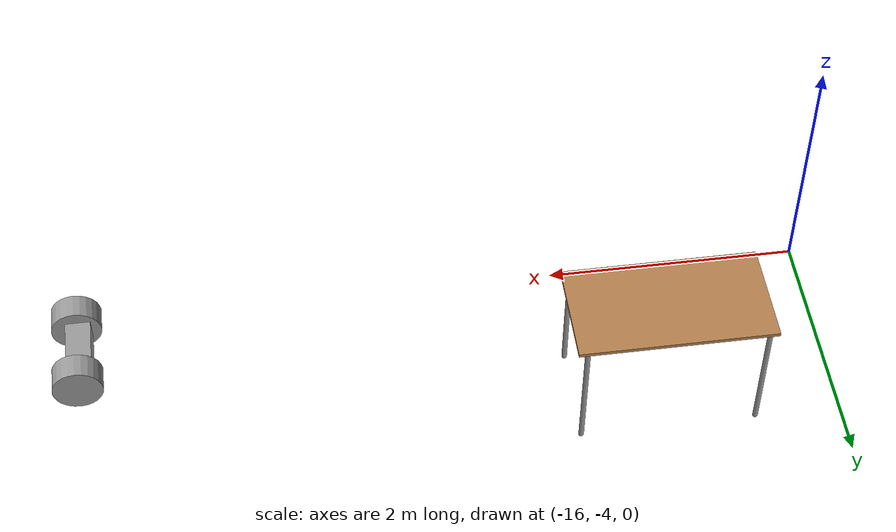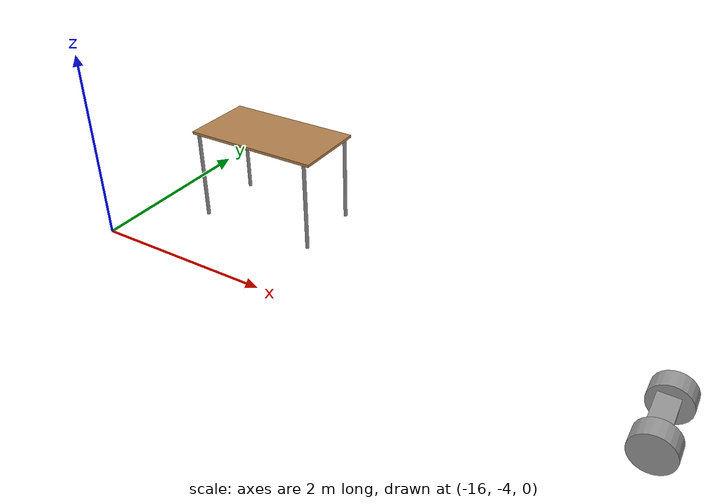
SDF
<?xml version='1.0'?>
<sdf version='1.6'>
  <model name='Table'>
    <model name='Table'>
      <model name='table'>
        <static>1</static>
        <link name='link'>
          <collision name='surface'>
            <pose frame=''>0 0 1 0 -0 0</pose>
            <geometry>
              <box>
                <size>1.5 0.8 0.03</size>
              </box>
            </geometry>
            <surface>
              <friction>
                <ode>
                  <mu>0.6</mu>
                  <mu2>0.6</mu2>
                </ode>
              </friction>
            </surface>
          </collision>
          <visual name='visual1'>
            <pose frame=''>0 0 1 0 -0 0</pose>
            <geometry>
              <box>
                <size>1.5 0.8 0.03</size>
              </box>
            </geometry>
            <material>
              <script>
                <uri>file://media/materials/scripts/gazebo.material</uri>
                <name>Gazebo/Wood</name>
              </script>
            </material>
          </visual>
          <collision name='front_left_leg'>
            <pose frame=''>0.68 0.38 0.5 0 -0 0</pose>
            <geometry>
              <cylinder>
                <radius>0.02</radius>
                <length>1</length>
              </cylinder>
            </geometry>
          </collision>
          <visual name='front_left_leg'>
            <pose frame=''>0.68 0.38 0.5 0 -0 0</pose>
            <geometry>
              <cylinder>
                <radius>0.02</radius>
                <length>1</length>
              </cylinder>
            </geometry>
            <material>
              <script>
                <uri>file://media/materials/scripts/gazebo.material</uri>
                <name>Gazebo/Grey</name>
              </script>
            </material>
          </visual>
          <collision name='front_right_leg'>
            <pose frame=''>0.68 -0.38 0.5 0 -0 0</pose>
            <geometry>
              <cylinder>
                <radius>0.02</radius>
                <length>1</length>
              </cylinder>
            </geometry>
          </collision>
          <visual name='front_right_leg'>
            <pose frame=''>0.68 -0.38 0.5 0 -0 0</pose>
            <geometry>
              <cylinder>
                <radius>0.02</radius>
                <length>1</length>
              </cylinder>
            </geometry>
            <material>
              <script>
                <uri>file://media/materials/scripts/gazebo.material</uri>
                <name>Gazebo/Grey</name>
              </script>
            </material>
          </visual>
          <collision name='back_right_leg'>
            <pose frame=''>-0.68 -0.38 0.5 0 -0 0</pose>
            <geometry>
              <cylinder>
                <radius>0.02</radius>
                <length>1</length>
              </cylinder>
            </geometry>
          </collision>
          <visual name='back_right_leg'>
            <pose frame=''>-0.68 -0.38 0.5 0 -0 0</pose>
            <geometry>
              <cylinder>
                <radius>0.02</radius>
                <length>1</length>
              </cylinder>
            </geometry>
            <material>
              <script>
                <uri>file://media/materials/scripts/gazebo.material</uri>
                <name>Gazebo/Grey</name>
              </script>
            </material>
          </visual>
          <collision name='back_left_leg'>
            <pose frame=''>-0.68 0.38 0.5 0 -0 0</pose>
            <geometry>
              <cylinder>
                <radius>0.02</radius>
                <length>1</length>
              </cylinder>
            </geometry>
          </collision>
          <visual name='back_left_leg'>
            <pose frame=''>-0.68 0.38 0.5 0 -0 0</pose>
            <geometry>
              <cylinder>
                <radius>0.02</radius>
                <length>1</length>
              </cylinder>
            </geometry>
            <material>
              <script>
                <uri>file://media/materials/scripts/gazebo.material</uri>
                <name>Gazebo/Grey</name>
              </script>
            </material>
          </visual>
        </link>
        <pose frame=''>-3.8e-05 -3e-06 0 0 -0 0</pose>
      </model>
      <static>0</static>
      <allow_auto_disable>1</allow_auto_disable>
      <pose frame=''>-14.655 -2.78483 0 0 -0 0</pose>
    </model>
    <model name='Robot'>
      <link name='link_0'>
        <pose frame=''>-0.013333 0 0 0 -0 0</pose>
        <inertial>
          <mass>1</mass>
          <inertia>
            <ixx>0.166667</ixx>
            <ixy>0</ixy>
            <ixz>0</ixz>
            <iyy>0.166667</iyy>
            <iyz>0</iyz>
            <izz>0.166667</izz>
          </inertia>
          <pose frame=''>0 0 0 0 -0 0</pose>
        </inertial>
        <gravity>1</gravity>
        <self_collide>0</self_collide>
        <kinematic>0</kinematic>
        <visual name='visual'>
          <pose frame=''>0 0 0 0 -0 0</pose>
          <geometry>
            <box>
              <size>0.2 0.4 0.2</size>
            </box>
          </geometry>
          <material>
            <lighting>1</lighting>
            <script>
              <uri>file://media/materials/scripts/gazebo.material</uri>
              <name>Gazebo/Grey</name>
            </script>
            <shader type='pixel'>
              <normal_map>__default__</normal_map>
            </shader>
            <ambient>0.3 0.3 0.3 1</ambient>
            <diffuse>0.7 0.7 0.7 1</diffuse>
            <specular>0.01 0.01 0.01 1</specular>
            <emissive>0 0 0 1</emissive>
          </material>
          <transparency>0</transparency>
          <cast_shadows>1</cast_shadows>
        </visual>
        <collision name='collision'>
          <laser_retro>0</laser_retro>
          <max_contacts>10</max_contacts>
          <pose frame=''>0 0 0 0 -0 0</pose>
          <geometry>
            <box>
              <size>0.2 0.4 0.2</size>
            </box>
          </geometry>
          <surface>
            <friction>
              <ode>
                <mu>1</mu>
                <mu2>1</mu2>
                <fdir1>0 0 0</fdir1>
                <slip1>0</slip1>
                <slip2>0</slip2>
              </ode>
              <torsional>
                <coefficient>1</coefficient>
                <patch_radius>0</patch_radius>
                <surface_radius>0</surface_radius>
                <use_patch_radius>1</use_patch_radius>
                <ode>
                  <slip>0</slip>
                </ode>
              </torsional>
            </friction>
            <bounce>
              <restitution_coefficient>0</restitution_coefficient>
              <threshold>1e+06</threshold>
            </bounce>
            <contact>
              <collide_without_contact>0</collide_without_contact>
              <collide_without_contact_bitmask>1</collide_without_contact_bitmask>
              <collide_bitmask>1</collide_bitmask>
              <ode>
                <soft_cfm>0</soft_cfm>
                <soft_erp>0.2</soft_erp>
                <kp>1e+13</kp>
                <kd>1</kd>
                <max_vel>0.01</max_vel>
                <min_depth>0</min_depth>
              </ode>
              <bullet>
                <split_impulse>1</split_impulse>
                <split_impulse_penetration_threshold>-0.01</split_impulse_penetration_threshold>
                <soft_cfm>0</soft_cfm>
                <soft_erp>0.2</soft_erp>
                <kp>1e+13</kp>
                <kd>1</kd>
              </bullet>
            </contact>
          </surface>
        </collision>
      </link>
      <link name='link_2'>
        <pose frame=''>0.006667 -0.300019 0 1.5707 -0 0</pose>
        <inertial>
          <mass>1</mass>
          <inertia>
            <ixx>0.145833</ixx>
            <ixy>0</ixy>
            <ixz>0</ixz>
            <iyy>0.145833</iyy>
            <iyz>0</iyz>
            <izz>0.125</izz>
          </inertia>
          <pose frame=''>0 0 0 0 -0 0</pose>
        </inertial>
        <gravity>1</gravity>
        <self_collide>0</self_collide>
        <kinematic>0</kinematic>
        <visual name='visual'>
          <pose frame=''>0 0 0 0 -0 0</pose>
          <geometry>
            <cylinder>
              <radius>0.2</radius>
              <length>0.2</length>
            </cylinder>
          </geometry>
          <material>
            <lighting>1</lighting>
            <script>
              <uri>file://media/materials/scripts/gazebo.material</uri>
              <name>Gazebo/Grey</name>
            </script>
            <shader type='pixel'>
              <normal_map>__default__</normal_map>
            </shader>
            <ambient>0.3 0.3 0.3 1</ambient>
            <diffuse>0.7 0.7 0.7 1</diffuse>
            <specular>0.01 0.01 0.01 1</specular>
            <emissive>0 0 0 1</emissive>
          </material>
          <transparency>0</transparency>
          <cast_shadows>1</cast_shadows>
        </visual>
        <collision name='collision'>
          <laser_retro>0</laser_retro>
          <max_contacts>10</max_contacts>
          <pose frame=''>0 0 0 0 -0 0</pose>
          <geometry>
            <cylinder>
              <radius>0.2</radius>
              <length>0.2</length>
            </cylinder>
          </geometry>
          <surface>
            <friction>
              <ode>
                <mu>1</mu>
                <mu2>1</mu2>
                <fdir1>0 0 0</fdir1>
                <slip1>0</slip1>
                <slip2>0</slip2>
              </ode>
              <torsional>
                <coefficient>1</coefficient>
                <patch_radius>0</patch_radius>
                <surface_radius>0</surface_radius>
                <use_patch_radius>1</use_patch_radius>
                <ode>
                  <slip>0</slip>
                </ode>
              </torsional>
            </friction>
            <bounce>
              <restitution_coefficient>0</restitution_coefficient>
              <threshold>1e+06</threshold>
            </bounce>
            <contact>
              <collide_without_contact>0</collide_without_contact>
              <collide_without_contact_bitmask>1</collide_without_contact_bitmask>
              <collide_bitmask>1</collide_bitmask>
              <ode>
                <soft_cfm>0</soft_cfm>
                <soft_erp>0.2</soft_erp>
                <kp>1e+13</kp>
                <kd>1</kd>
                <max_vel>0.01</max_vel>
                <min_depth>0</min_depth>
              </ode>
              <bullet>
                <split_impulse>1</split_impulse>
                <split_impulse_penetration_threshold>-0.01</split_impulse_penetration_threshold>
                <soft_cfm>0</soft_cfm>
                <soft_erp>0.2</soft_erp>
                <kp>1e+13</kp>
                <kd>1</kd>
              </bullet>
            </contact>
          </surface>
        </collision>
      </link>
      <link name='link_2_clone'>
        <pose frame=''>0.006667 0.30002 0 1.5707 -0 0</pose>
        <inertial>
          <mass>1</mass>
          <inertia>
            <ixx>0.145833</ixx>
            <ixy>0</ixy>
            <ixz>0</ixz>
            <iyy>0.145833</iyy>
            <iyz>0</iyz>
            <izz>0.125</izz>
          </inertia>
          <pose frame=''>0 0 0 0 -0 0</pose>
        </inertial>
        <self_collide>0</self_collide>
        <kinematic>0</kinematic>
        <visual name='visual'>
          <pose frame=''>0 0 0 0 -0 0</pose>
          <geometry>
            <cylinder>
              <radius>0.2</radius>
              <length>0.2</length>
            </cylinder>
          </geometry>
          <material>
            <lighting>1</lighting>
            <script>
              <uri>file://media/materials/scripts/gazebo.material</uri>
              <name>Gazebo/Grey</name>
            </script>
            <shader type='pixel'>
              <normal_map>__default__</normal_map>
            </shader>
            <ambient>0.3 0.3 0.3 1</ambient>
            <diffuse>0.7 0.7 0.7 1</diffuse>
            <specular>0.01 0.01 0.01 1</specular>
            <emissive>0 0 0 1</emissive>
          </material>
          <transparency>0</transparency>
          <cast_shadows>1</cast_shadows>
        </visual>
        <collision name='collision'>
          <laser_retro>0</laser_retro>
          <max_contacts>10</max_contacts>
          <pose frame=''>0 0 0 0 -0 0</pose>
          <geometry>
            <cylinder>
              <radius>0.2</radius>
              <length>0.2</length>
            </cylinder>
          </geometry>
          <surface>
            <friction>
              <ode>
                <mu>1</mu>
                <mu2>1</mu2>
                <fdir1>0 0 0</fdir1>
                <slip1>0</slip1>
                <slip2>0</slip2>
              </ode>
              <torsional>
                <coefficient>1</coefficient>
                <patch_radius>0</patch_radius>
                <surface_radius>0</surface_radius>
                <use_patch_radius>1</use_patch_radius>
                <ode>
                  <slip>0</slip>
                </ode>
              </torsional>
            </friction>
            <bounce>
              <restitution_coefficient>0</restitution_coefficient>
              <threshold>1e+06</threshold>
            </bounce>
            <contact>
              <collide_without_contact>0</collide_without_contact>
              <collide_without_contact_bitmask>1</collide_without_contact_bitmask>
              <collide_bitmask>1</collide_bitmask>
              <ode>
                <soft_cfm>0</soft_cfm>
                <soft_erp>0.2</soft_erp>
                <kp>1e+13</kp>
                <kd>1</kd>
                <max_vel>0.01</max_vel>
                <min_depth>0</min_depth>
              </ode>
              <bullet>
                <split_impulse>1</split_impulse>
                <split_impulse_penetration_threshold>-0.01</split_impulse_penetration_threshold>
                <soft_cfm>0</soft_cfm>
                <soft_erp>0.2</soft_erp>
                <kp>1e+13</kp>
                <kd>1</kd>
              </bullet>
            </contact>
          </surface>
        </collision>
      </link>
      <joint name='link_0_JOINT_2' type='revolute'>
        <parent>link_0</parent>
        <child>link_2</child>
        <pose frame=''>0 0 0 0 -0 0</pose>
        <axis>
          <xyz>0 0 1</xyz>
          <use_parent_model_frame>0</use_parent_model_frame>
          <limit>
            <lower>-1.79769e+308</lower>
            <upper>1.79769e+308</upper>
            <effort>-1</effort>
            <velocity>-1</velocity>
          </limit>
          <dynamics>
            <spring_reference>0</spring_reference>
            <spring_stiffness>0</spring_stiffness>
            <damping>0</damping>
          </dynamics>
        </axis>
        <physics>
          <ode>
            <limit>
              <cfm>0</cfm>
              <erp>0.2</erp>
            </limit>
            <suspension>
              <cfm>0</cfm>
              <erp>0.2</erp>
            </suspension>
          </ode>
        </physics>
      </joint>
      <joint name='link_0_JOINT_3' type='revolute'>
        <parent>link_0</parent>
        <child>link_2_clone</child>
        <pose frame=''>0 0 0 0 -0 0</pose>
        <axis>
          <xyz>0 0 1</xyz>
          <use_parent_model_frame>0</use_parent_model_frame>
          <limit>
            <lower>-1.79769e+308</lower>
            <upper>1.79769e+308</upper>
            <effort>-1</effort>
            <velocity>-1</velocity>
          </limit>
          <dynamics>
            <spring_reference>0</spring_reference>
            <spring_stiffness>0</spring_stiffness>
            <damping>0</damping>
          </dynamics>
        </axis>
        <physics>
          <ode>
            <limit>
              <cfm>0</cfm>
              <erp>0.2</erp>
            </limit>
            <suspension>
              <cfm>0</cfm>
              <erp>0.2</erp>
            </suspension>
          </ode>
        </physics>
      </joint>
      <static>0</static>
      <allow_auto_disable>1</allow_auto_disable>
      <pose frame=''>-10.1716 -3.73095 0 0 -0 0</pose>
    </model>
    <static>0</static>
    <allow_auto_disable>1</allow_auto_disable>
  </model>
</sdf>
